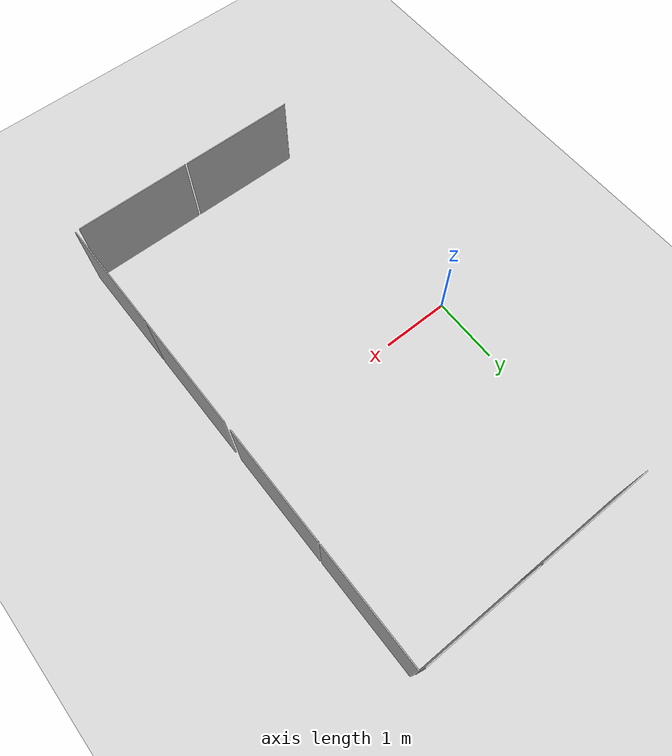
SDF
<sdf version="1.5">
 <world name="default">
  <light name="sun" type="directional">
   <pose>0 0 10 0 -0 0</pose>
   <diffuse>0.6 0.6 0.6 1</diffuse>
   <specular>0.2 0.2 0.2 1</specular>
   <attenuation>
    <range>1000</range>
    <constant>0.9</constant>
    <linear>0.01</linear>
    <quadratic>0.001</quadratic>
   </attenuation>
   <direction>-0.5 0.1 -0.9</direction>
  </light>
  <model name="ground_plane">
   <static>1</static>
   <link name="link">
    <collision name="collision">
     <geometry><plane><normal>0 0 1</normal><size>300 300</size></plane></geometry>
     <surface><friction><ode><mu>10</mu><mu2>10</mu2><slip1>0</slip1><slip2>0</slip2></ode></friction></surface>
    </collision>
    <visual name="visual">
     <cast_shadows>0</cast_shadows>
     <geometry><plane><normal>0 0 1</normal><size>300 300</size></plane></geometry>
     <material>
      <script><uri>file://media/materials/scripts/gazebo.material</uri><name>Gazebo/Grey</name></script>
     </material>
    </visual>
   </link>
  </model>
  <physics name="default_physics" default="0" type="ode">
   <max_step_size>0.001</max_step_size>
   <real_time_factor>1</real_time_factor>
   <real_time_update_rate>1000</real_time_update_rate>
   <gravity>0 0 -9.8</gravity>
   <magnetic_field>5.5645e-06 2.28758e-05 -4.23884e-05</magnetic_field>
  </physics>
  <scene><ambient>0.4 0.4 0.4 1</ambient><background>0.7 0.7 0.7 1</background><shadows>1</shadows></scene>
  <spherical_coordinates>
   <surface_model>EARTH_WGS84</surface_model>
   <latitude_deg>0</latitude_deg>
   <longitude_deg>0</longitude_deg>
   <elevation>0</elevation>
   <heading_deg>0</heading_deg>
  </spherical_coordinates>
  <model name="nist_simple_ramp_120_7">
   <static>1</static>
   <link name="nist_simple_ramp_120_link">
    <collision name="collision">
     <geometry>
      <mesh><uri>model://nist_simple_ramp_120/meshes/nist_simple_ramp_120.dae</uri><scale>1 1 1</scale></mesh>
     </geometry>
     <surface><friction><ode><mu>100</mu><mu2>100</mu2><slip1>0</slip1><slip2>0</slip2></ode></friction></surface>
    </collision>
    <visual name="visual">
     <geometry>
      <mesh><uri>model://nist_simple_ramp_120/meshes/nist_simple_ramp_120.dae</uri><scale>1 1 1</scale></mesh>
     </geometry>
    </visual>
   </link>
   <pose>3.1 -3.0 0.65 -0.7854 -1.57 1.57</pose>
  </model>
  <model name="nist_simple_ramp_120_5">
   <static>1</static>
   <link name="nist_simple_ramp_120_link">
    <collision name="collision">
     <geometry>
      <mesh><uri>model://nist_simple_ramp_120/meshes/nist_simple_ramp_120.dae</uri><scale>1 1 1</scale></mesh>
     </geometry>
     <surface><friction><ode><mu>100</mu><mu2>100</mu2><slip1>0</slip1><slip2>0</slip2></ode></friction></surface>
    </collision>
    <visual name="visual">
     <geometry>
      <mesh><uri>model://nist_simple_ramp_120/meshes/nist_simple_ramp_120.dae</uri><scale>1 1 1</scale></mesh>
     </geometry>
    </visual>
   </link>
   <pose>1.4 -3.0 0.65 -0.7854 -1.57 1.57</pose>
  </model>
  <model name="nist_simple_ramp_120_1">
   <static>1</static>
   <link name="nist_simple_ramp_120_link">
    <collision name="collision">
     <geometry>
      <mesh><uri>model://nist_simple_ramp_120/meshes/nist_simple_ramp_120.dae</uri><scale>1 1 1</scale></mesh>
     </geometry>
     <surface><friction><ode><mu>100</mu><mu2>100</mu2><slip1>0</slip1><slip2>0</slip2></ode></friction></surface>
    </collision>
    <visual name="visual">
     <geometry>
      <mesh><uri>model://nist_simple_ramp_120/meshes/nist_simple_ramp_120.dae</uri><scale>1 1 1</scale></mesh>
     </geometry>
    </visual>
   </link>
   <pose>1.4 3.9 0.65 -0.7854 -1.57 1.57</pose>
  </model>
  <model name="nist_simple_ramp_120_2">
   <static>1</static>
   <link name="nist_simple_ramp_120_link">
    <collision name="collision">
     <geometry>
      <mesh><uri>model://nist_simple_ramp_120/meshes/nist_simple_ramp_120.dae</uri><scale>1 1 1</scale></mesh>
     </geometry>
     <surface><friction><ode><mu>100</mu><mu2>100</mu2><slip1>0</slip1><slip2>0</slip2></ode></friction></surface>
    </collision>
    <visual name="visual">
     <geometry>
      <mesh><uri>model://nist_simple_ramp_120/meshes/nist_simple_ramp_120.dae</uri><scale>1 1 1</scale></mesh>
     </geometry>
    </visual>
   </link>
   <pose>4 2.2 0.65 -0.7854 -1.57 0</pose>
  </model>
  <model name="nist_simple_ramp_120_4">
   <static>1</static>
   <link name="nist_simple_ramp_120_link">
    <collision name="collision">
     <geometry>
      <mesh><uri>model://nist_simple_ramp_120/meshes/nist_simple_ramp_120.dae</uri><scale>1 1 1</scale></mesh>
     </geometry>
     <surface><friction><ode><mu>100</mu><mu2>100</mu2><slip1>0</slip1><slip2>0</slip2></ode></friction></surface>
    </collision>
    <visual name="visual">
     <geometry>
      <mesh><uri>model://nist_simple_ramp_120/meshes/nist_simple_ramp_120.dae</uri><scale>1 1 1</scale></mesh>
     </geometry>
    </visual>
   </link>
   <pose>4 -1.3 0.65 -0.7854 -1.57 0</pose>
  </model>
  <model name="nist_simple_ramp_120_3">
   <static>1</static>
   <link name="nist_simple_ramp_120_link">
    <collision name="collision">
     <geometry>
      <mesh><uri>model://nist_simple_ramp_120/meshes/nist_simple_ramp_120.dae</uri><scale>1 1 1</scale></mesh>
     </geometry>
     <surface><friction><ode><mu>100</mu><mu2>100</mu2><slip1>0</slip1><slip2>0</slip2></ode></friction></surface>
    </collision>
    <visual name="visual">
     <geometry>
      <mesh><uri>model://nist_simple_ramp_120/meshes/nist_simple_ramp_120.dae</uri><scale>1 1 1</scale></mesh>
     </geometry>
    </visual>
   </link>
   <pose>3.1 3.9 0.65 -0.7854 -1.57 1.57</pose>
  </model>
  <model name="nist_simple_ramp_120_6">
   <static>1</static>
   <link name="nist_simple_ramp_120_link">
    <collision name="collision">
     <geometry>
      <mesh><uri>model://nist_simple_ramp_120/meshes/nist_simple_ramp_120.dae</uri><scale>1 1 1</scale></mesh>
     </geometry>
     <surface><friction><ode><mu>100</mu><mu2>100</mu2><slip1>0</slip1><slip2>0</slip2></ode></friction></surface>
    </collision>
    <visual name="visual">
     <geometry>
      <mesh><uri>model://nist_simple_ramp_120/meshes/nist_simple_ramp_120.dae</uri><scale>1 1 1</scale></mesh>
     </geometry>
    </visual>
   </link>
   <pose>4 -3.0 0.65 -0.7854 -1.57 0</pose>
  </model>
  <model name="nist_simple_ramp_120_0">
   <static>1</static>
   <link name="nist_simple_ramp_120_link">
    <collision name="collision">
     <geometry>
      <mesh><uri>model://nist_simple_ramp_120/meshes/nist_simple_ramp_120.dae</uri><scale>1 1 1</scale></mesh>
     </geometry>
     <surface><friction><ode><mu>100</mu><mu2>100</mu2><slip1>0</slip1><slip2>0</slip2></ode></friction></surface>
    </collision>
    <visual name="visual">
     <geometry>
      <mesh><uri>model://nist_simple_ramp_120/meshes/nist_simple_ramp_120.dae</uri><scale>1 1 1</scale></mesh>
     </geometry>
    </visual>
   </link>
   <pose>4 0.5 0.65 -0.7854 -1.57 0</pose>
  </model>
 </world>
</sdf>
